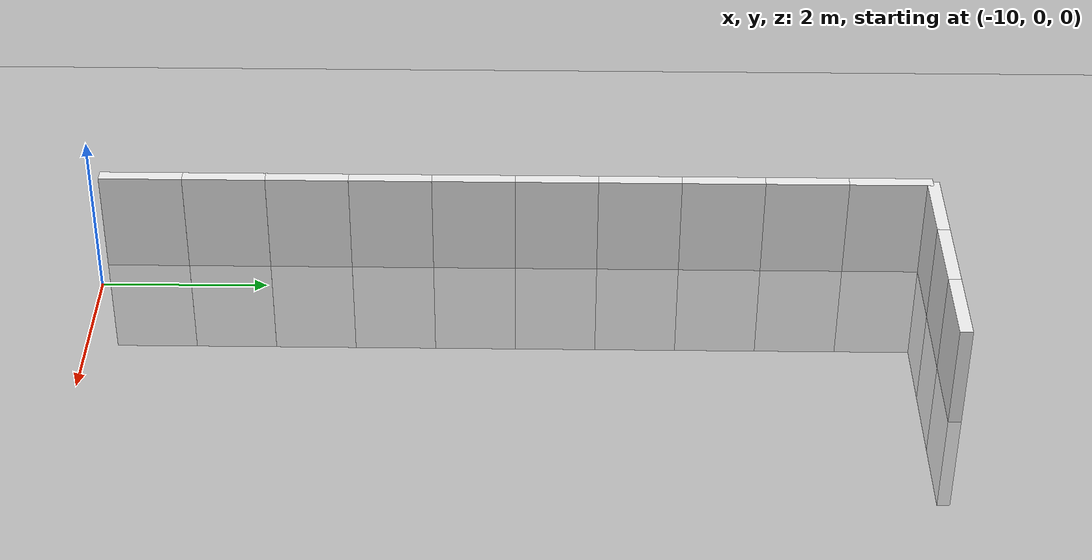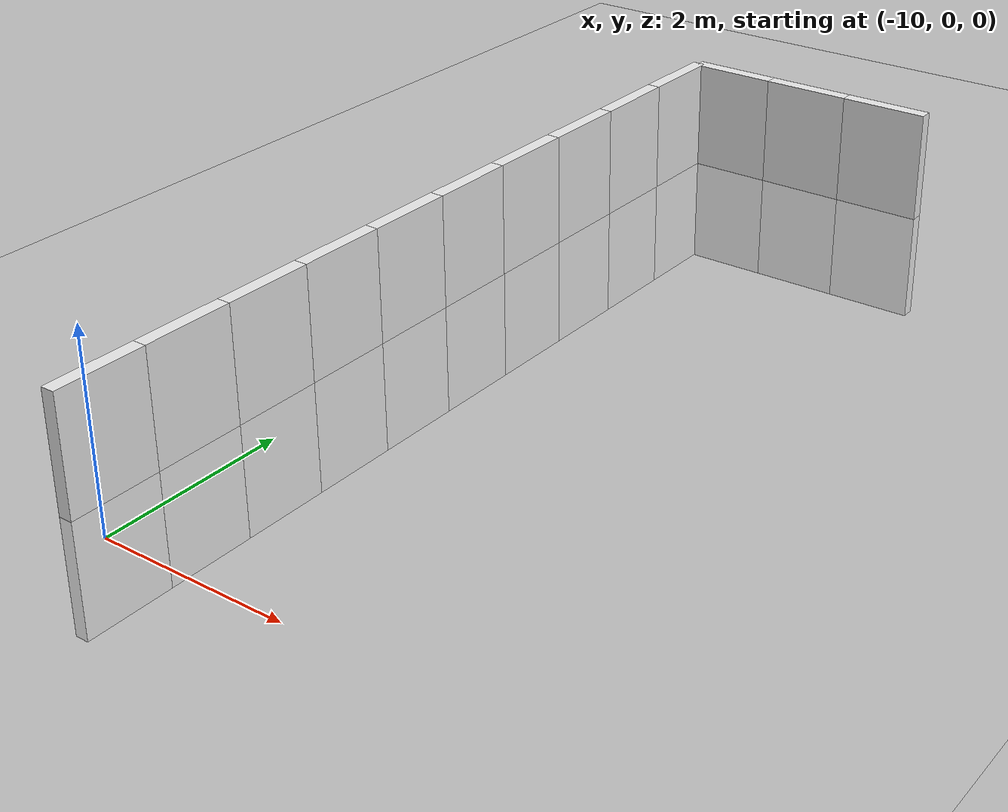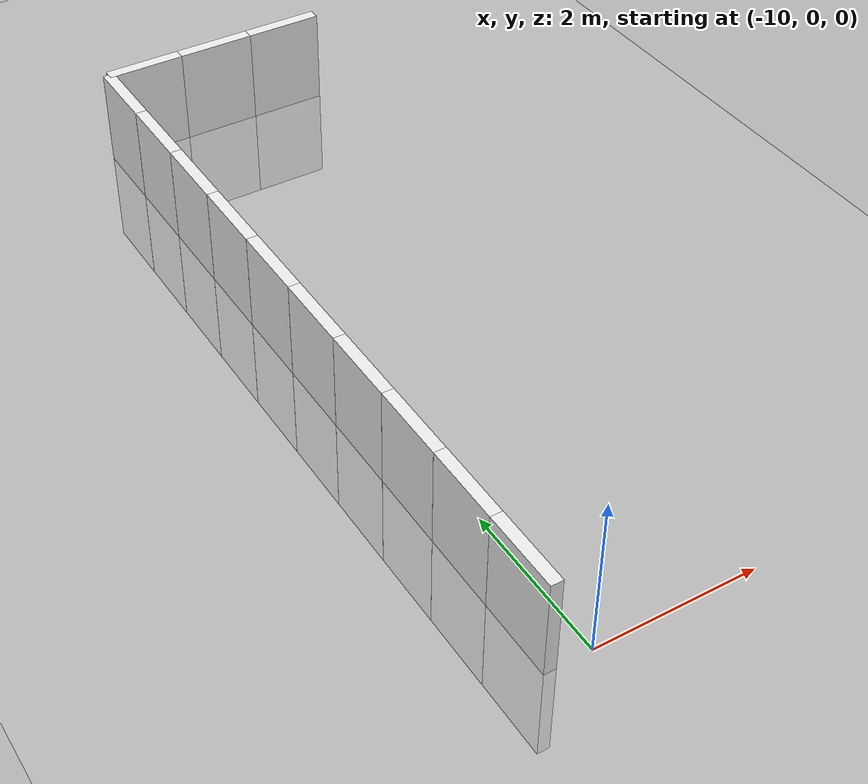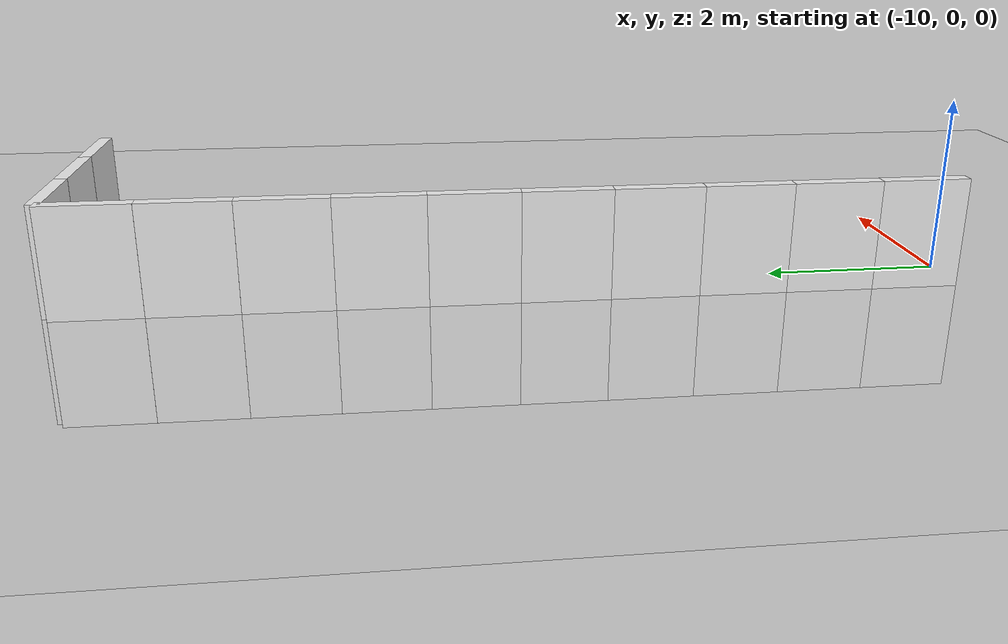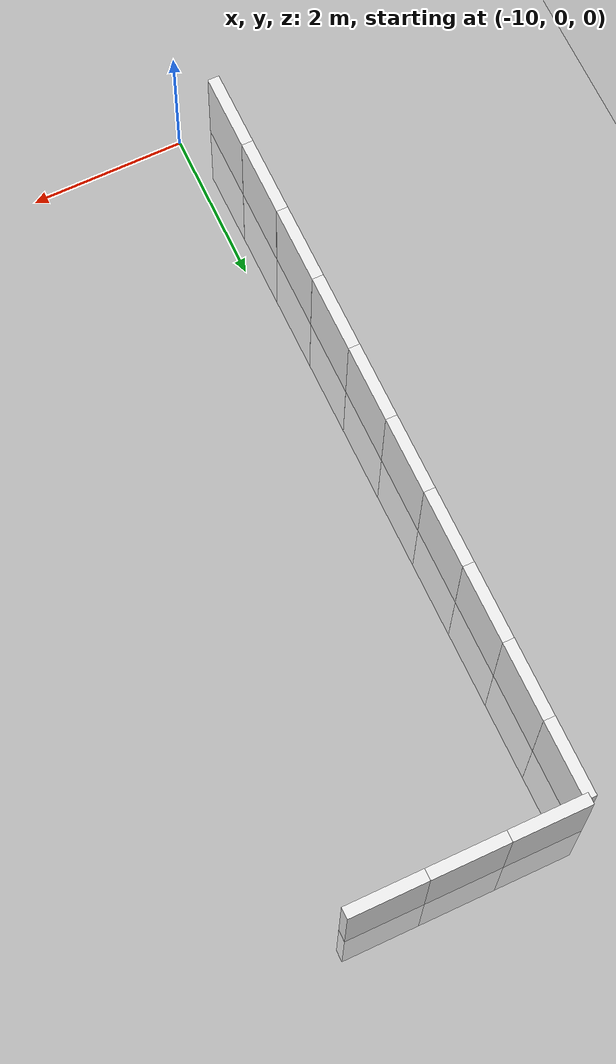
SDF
<sdf version="1.7">
 <world name="default">
  <model name="ground_plane">
   <static>1</static>
   <link name="link">
    <collision name="collision">
     <geometry><plane><normal>0 0 1</normal><size>100 100</size></plane></geometry>
     <surface>
      <contact><collide_bitmask>65535</collide_bitmask></contact>
      <friction><ode><mu>100</mu><mu2>50</mu2></ode></friction>
     </surface>
    </collision>
    <visual name="visual">
     <cast_shadows>0</cast_shadows>
     <geometry><plane><normal>0 0 1</normal><size>100 100</size></plane></geometry>
     <material>
      <script><uri>file://media/materials/scripts/gazebo.material</uri><name>Gazebo/Grey</name></script>
     </material>
    </visual>
   </link>
  </model>
  <model name="wall_left_01">
   <link name="Wall_10">
    <inertial>
     <mass>1</mass>
     <inertia><ixx>1</ixx><ixy>0</ixy><ixz>0</ixz><iyy>1</iyy><iyz>0</iyz><izz>1</izz></inertia>
    </inertial>
    <visual name="Wall_10_Visual_0">
     <geometry><box><size>1 0.15 2.5</size></box></geometry>
     <material>
      <script>
       <uri>model://wall/materials/scripts</uri>
       <uri>model://wall/materials/textures</uri>
       <name>wall_white</name>
      </script>
      <shader type="pixel"><normal_map>__default__</normal_map></shader>
      <ambient>1 1 1 1</ambient>
      <diffuse>1 1 1 1</diffuse>
      <specular>0 0 0 1</specular>
      <emissive>0 0 0 1</emissive>
     </material>
     <meta><layer>0</layer></meta>
    </visual>
    <collision name="Wall_10_Collision_0">
     <geometry><box><size>1 0.15 2.5</size></box></geometry>
     <surface>
      <friction>
       <ode><mu>1</mu><mu2>1</mu2><fdir1>0 0 0</fdir1><slip1>0</slip1><slip2>0</slip2></ode>
       <torsional>
        <coefficient>1</coefficient>
        <patch_radius>0</patch_radius>
        <surface_radius>0</surface_radius>
        <use_patch_radius>1</use_patch_radius>
        <ode><slip>0</slip></ode>
       </torsional>
      </friction>
      <bounce><restitution_coefficient>0</restitution_coefficient><threshold>1e+06</threshold></bounce>
      <contact>
       <collide_without_contact>0</collide_without_contact>
       <collide_without_contact_bitmask>1</collide_without_contact_bitmask>
       <collide_bitmask>1</collide_bitmask>
       <ode>
        <soft_cfm>0</soft_cfm>
        <soft_erp>0.2</soft_erp>
        <kp>1e+13</kp>
        <kd>1</kd>
        <max_vel>0.01</max_vel>
        <min_depth>0</min_depth>
       </ode>
       <bullet>
        <split_impulse>1</split_impulse>
        <split_impulse_penetration_threshold>-0.01</split_impulse_penetration_threshold>
        <soft_cfm>0</soft_cfm>
        <soft_erp>0.2</soft_erp>
        <kp>1e+13</kp>
        <kd>1</kd>
       </bullet>
      </contact>
     </surface>
    </collision>
   </link>
   <static>1</static>
   <pose>-10 10 0 0 -0 0</pose>
  </model>
  <model name="wall_left_02">
   <link name="Wall_10">
    <inertial>
     <mass>1</mass>
     <inertia><ixx>1</ixx><ixy>0</ixy><ixz>0</ixz><iyy>1</iyy><iyz>0</iyz><izz>1</izz></inertia>
    </inertial>
    <visual name="Wall_10_Visual_0">
     <geometry><box><size>1 0.15 2.5</size></box></geometry>
     <material>
      <script>
       <uri>model://wall/materials/scripts</uri>
       <uri>model://wall/materials/textures</uri>
       <name>wall_white</name>
      </script>
      <shader type="pixel"><normal_map>__default__</normal_map></shader>
      <ambient>1 1 1 1</ambient>
      <diffuse>1 1 1 1</diffuse>
      <specular>0 0 0 1</specular>
      <emissive>0 0 0 1</emissive>
     </material>
     <meta><layer>0</layer></meta>
    </visual>
    <collision name="Wall_10_Collision_0">
     <geometry><box><size>1 0.15 2.5</size></box></geometry>
     <surface>
      <friction>
       <ode><mu>1</mu><mu2>1</mu2><fdir1>0 0 0</fdir1><slip1>0</slip1><slip2>0</slip2></ode>
       <torsional>
        <coefficient>1</coefficient>
        <patch_radius>0</patch_radius>
        <surface_radius>0</surface_radius>
        <use_patch_radius>1</use_patch_radius>
        <ode><slip>0</slip></ode>
       </torsional>
      </friction>
      <bounce><restitution_coefficient>0</restitution_coefficient><threshold>1e+06</threshold></bounce>
      <contact>
       <collide_without_contact>0</collide_without_contact>
       <collide_without_contact_bitmask>1</collide_without_contact_bitmask>
       <collide_bitmask>1</collide_bitmask>
       <ode>
        <soft_cfm>0</soft_cfm>
        <soft_erp>0.2</soft_erp>
        <kp>1e+13</kp>
        <kd>1</kd>
        <max_vel>0.01</max_vel>
        <min_depth>0</min_depth>
       </ode>
       <bullet>
        <split_impulse>1</split_impulse>
        <split_impulse_penetration_threshold>-0.01</split_impulse_penetration_threshold>
        <soft_cfm>0</soft_cfm>
        <soft_erp>0.2</soft_erp>
        <kp>1e+13</kp>
        <kd>1</kd>
       </bullet>
      </contact>
     </surface>
    </collision>
   </link>
   <static>1</static>
   <pose>-9 10 0 0 -0 0</pose>
  </model>
  <model name="wall_left_03">
   <link name="Wall_10">
    <inertial>
     <mass>1</mass>
     <inertia><ixx>1</ixx><ixy>0</ixy><ixz>0</ixz><iyy>1</iyy><iyz>0</iyz><izz>1</izz></inertia>
    </inertial>
    <visual name="Wall_10_Visual_0">
     <geometry><box><size>1 0.15 2.5</size></box></geometry>
     <material>
      <script>
       <uri>model://wall/materials/scripts</uri>
       <uri>model://wall/materials/textures</uri>
       <name>wall_white</name>
      </script>
      <shader type="pixel"><normal_map>__default__</normal_map></shader>
      <ambient>1 1 1 1</ambient>
      <diffuse>1 1 1 1</diffuse>
      <specular>0 0 0 1</specular>
      <emissive>0 0 0 1</emissive>
     </material>
     <meta><layer>0</layer></meta>
    </visual>
    <collision name="Wall_10_Collision_0">
     <geometry><box><size>1 0.15 2.5</size></box></geometry>
     <surface>
      <friction>
       <ode><mu>1</mu><mu2>1</mu2><fdir1>0 0 0</fdir1><slip1>0</slip1><slip2>0</slip2></ode>
       <torsional>
        <coefficient>1</coefficient>
        <patch_radius>0</patch_radius>
        <surface_radius>0</surface_radius>
        <use_patch_radius>1</use_patch_radius>
        <ode><slip>0</slip></ode>
       </torsional>
      </friction>
      <bounce><restitution_coefficient>0</restitution_coefficient><threshold>1e+06</threshold></bounce>
      <contact>
       <collide_without_contact>0</collide_without_contact>
       <collide_without_contact_bitmask>1</collide_without_contact_bitmask>
       <collide_bitmask>1</collide_bitmask>
       <ode>
        <soft_cfm>0</soft_cfm>
        <soft_erp>0.2</soft_erp>
        <kp>1e+13</kp>
        <kd>1</kd>
        <max_vel>0.01</max_vel>
        <min_depth>0</min_depth>
       </ode>
       <bullet>
        <split_impulse>1</split_impulse>
        <split_impulse_penetration_threshold>-0.01</split_impulse_penetration_threshold>
        <soft_cfm>0</soft_cfm>
        <soft_erp>0.2</soft_erp>
        <kp>1e+13</kp>
        <kd>1</kd>
       </bullet>
      </contact>
     </surface>
    </collision>
   </link>
   <static>1</static>
   <pose>-8 10 0 0 -0 0</pose>
  </model>
  <model name="wall_back_01">
   <link name="Wall_10">
    <inertial>
     <mass>1</mass>
     <inertia><ixx>1</ixx><ixy>0</ixy><ixz>0</ixz><iyy>1</iyy><iyz>0</iyz><izz>1</izz></inertia>
    </inertial>
    <visual name="Wall_10_Visual_0">
     <geometry><box><size>1 0.15 2.5</size></box></geometry>
     <material>
      <script>
       <uri>model://wall/materials/scripts</uri>
       <uri>model://wall/materials/textures</uri>
       <name>wall_white</name>
      </script>
      <shader type="pixel"><normal_map>__default__</normal_map></shader>
      <ambient>1 1 1 1</ambient>
      <diffuse>1 1 1 1</diffuse>
      <specular>0 0 0 1</specular>
      <emissive>0 0 0 1</emissive>
     </material>
     <meta><layer>0</layer></meta>
    </visual>
    <collision name="Wall_10_Collision_0">
     <geometry><box><size>1 0.15 2.5</size></box></geometry>
     <surface>
      <friction>
       <ode><mu>1</mu><mu2>1</mu2><fdir1>0 0 0</fdir1><slip1>0</slip1><slip2>0</slip2></ode>
       <torsional>
        <coefficient>1</coefficient>
        <patch_radius>0</patch_radius>
        <surface_radius>0</surface_radius>
        <use_patch_radius>1</use_patch_radius>
        <ode><slip>0</slip></ode>
       </torsional>
      </friction>
      <bounce><restitution_coefficient>0</restitution_coefficient><threshold>1e+06</threshold></bounce>
      <contact>
       <collide_without_contact>0</collide_without_contact>
       <collide_without_contact_bitmask>1</collide_without_contact_bitmask>
       <collide_bitmask>1</collide_bitmask>
       <ode>
        <soft_cfm>0</soft_cfm>
        <soft_erp>0.2</soft_erp>
        <kp>1e+13</kp>
        <kd>1</kd>
        <max_vel>0.01</max_vel>
        <min_depth>0</min_depth>
       </ode>
       <bullet>
        <split_impulse>1</split_impulse>
        <split_impulse_penetration_threshold>-0.01</split_impulse_penetration_threshold>
        <soft_cfm>0</soft_cfm>
        <soft_erp>0.2</soft_erp>
        <kp>1e+13</kp>
        <kd>1</kd>
       </bullet>
      </contact>
     </surface>
    </collision>
   </link>
   <static>1</static>
   <pose>-10.5 9.5 0 0 -0 1.57</pose>
  </model>
  <model name="wall_back_02">
   <link name="Wall_10">
    <inertial>
     <mass>1</mass>
     <inertia><ixx>1</ixx><ixy>0</ixy><ixz>0</ixz><iyy>1</iyy><iyz>0</iyz><izz>1</izz></inertia>
    </inertial>
    <visual name="Wall_10_Visual_0">
     <geometry><box><size>1 0.15 2.5</size></box></geometry>
     <material>
      <script>
       <uri>model://wall/materials/scripts</uri>
       <uri>model://wall/materials/textures</uri>
       <name>wall_white</name>
      </script>
      <shader type="pixel"><normal_map>__default__</normal_map></shader>
      <ambient>1 1 1 1</ambient>
      <diffuse>1 1 1 1</diffuse>
      <specular>0 0 0 1</specular>
      <emissive>0 0 0 1</emissive>
     </material>
     <meta><layer>0</layer></meta>
    </visual>
    <collision name="Wall_10_Collision_0">
     <geometry><box><size>1 0.15 2.5</size></box></geometry>
     <surface>
      <friction>
       <ode><mu>1</mu><mu2>1</mu2><fdir1>0 0 0</fdir1><slip1>0</slip1><slip2>0</slip2></ode>
       <torsional>
        <coefficient>1</coefficient>
        <patch_radius>0</patch_radius>
        <surface_radius>0</surface_radius>
        <use_patch_radius>1</use_patch_radius>
        <ode><slip>0</slip></ode>
       </torsional>
      </friction>
      <bounce><restitution_coefficient>0</restitution_coefficient><threshold>1e+06</threshold></bounce>
      <contact>
       <collide_without_contact>0</collide_without_contact>
       <collide_without_contact_bitmask>1</collide_without_contact_bitmask>
       <collide_bitmask>1</collide_bitmask>
       <ode>
        <soft_cfm>0</soft_cfm>
        <soft_erp>0.2</soft_erp>
        <kp>1e+13</kp>
        <kd>1</kd>
        <max_vel>0.01</max_vel>
        <min_depth>0</min_depth>
       </ode>
       <bullet>
        <split_impulse>1</split_impulse>
        <split_impulse_penetration_threshold>-0.01</split_impulse_penetration_threshold>
        <soft_cfm>0</soft_cfm>
        <soft_erp>0.2</soft_erp>
        <kp>1e+13</kp>
        <kd>1</kd>
       </bullet>
      </contact>
     </surface>
    </collision>
   </link>
   <static>1</static>
   <pose>-10.5 8.5 0 0 -0 1.57</pose>
  </model>
  <model name="wall_back_03">
   <link name="Wall_10">
    <inertial>
     <mass>1</mass>
     <inertia><ixx>1</ixx><ixy>0</ixy><ixz>0</ixz><iyy>1</iyy><iyz>0</iyz><izz>1</izz></inertia>
    </inertial>
    <visual name="Wall_10_Visual_0">
     <geometry><box><size>1 0.15 2.5</size></box></geometry>
     <material>
      <script>
       <uri>model://wall/materials/scripts</uri>
       <uri>model://wall/materials/textures</uri>
       <name>wall_white</name>
      </script>
      <shader type="pixel"><normal_map>__default__</normal_map></shader>
      <ambient>1 1 1 1</ambient>
      <diffuse>1 1 1 1</diffuse>
      <specular>0 0 0 1</specular>
      <emissive>0 0 0 1</emissive>
     </material>
     <meta><layer>0</layer></meta>
    </visual>
    <collision name="Wall_10_Collision_0">
     <geometry><box><size>1 0.15 2.5</size></box></geometry>
     <surface>
      <friction>
       <ode><mu>1</mu><mu2>1</mu2><fdir1>0 0 0</fdir1><slip1>0</slip1><slip2>0</slip2></ode>
       <torsional>
        <coefficient>1</coefficient>
        <patch_radius>0</patch_radius>
        <surface_radius>0</surface_radius>
        <use_patch_radius>1</use_patch_radius>
        <ode><slip>0</slip></ode>
       </torsional>
      </friction>
      <bounce><restitution_coefficient>0</restitution_coefficient><threshold>1e+06</threshold></bounce>
      <contact>
       <collide_without_contact>0</collide_without_contact>
       <collide_without_contact_bitmask>1</collide_without_contact_bitmask>
       <collide_bitmask>1</collide_bitmask>
       <ode>
        <soft_cfm>0</soft_cfm>
        <soft_erp>0.2</soft_erp>
        <kp>1e+13</kp>
        <kd>1</kd>
        <max_vel>0.01</max_vel>
        <min_depth>0</min_depth>
       </ode>
       <bullet>
        <split_impulse>1</split_impulse>
        <split_impulse_penetration_threshold>-0.01</split_impulse_penetration_threshold>
        <soft_cfm>0</soft_cfm>
        <soft_erp>0.2</soft_erp>
        <kp>1e+13</kp>
        <kd>1</kd>
       </bullet>
      </contact>
     </surface>
    </collision>
   </link>
   <static>1</static>
   <pose>-10.5 7.5 0 0 -0 1.57</pose>
  </model>
  <model name="wall_back_04">
   <link name="Wall_10">
    <inertial>
     <mass>1</mass>
     <inertia><ixx>1</ixx><ixy>0</ixy><ixz>0</ixz><iyy>1</iyy><iyz>0</iyz><izz>1</izz></inertia>
    </inertial>
    <visual name="Wall_10_Visual_0">
     <geometry><box><size>1 0.15 2.5</size></box></geometry>
     <material>
      <script>
       <uri>model://wall/materials/scripts</uri>
       <uri>model://wall/materials/textures</uri>
       <name>wall_white</name>
      </script>
      <shader type="pixel"><normal_map>__default__</normal_map></shader>
      <ambient>1 1 1 1</ambient>
      <diffuse>1 1 1 1</diffuse>
      <specular>0 0 0 1</specular>
      <emissive>0 0 0 1</emissive>
     </material>
     <meta><layer>0</layer></meta>
    </visual>
    <collision name="Wall_10_Collision_0">
     <geometry><box><size>1 0.15 2.5</size></box></geometry>
     <surface>
      <friction>
       <ode><mu>1</mu><mu2>1</mu2><fdir1>0 0 0</fdir1><slip1>0</slip1><slip2>0</slip2></ode>
       <torsional>
        <coefficient>1</coefficient>
        <patch_radius>0</patch_radius>
        <surface_radius>0</surface_radius>
        <use_patch_radius>1</use_patch_radius>
        <ode><slip>0</slip></ode>
       </torsional>
      </friction>
      <bounce><restitution_coefficient>0</restitution_coefficient><threshold>1e+06</threshold></bounce>
      <contact>
       <collide_without_contact>0</collide_without_contact>
       <collide_without_contact_bitmask>1</collide_without_contact_bitmask>
       <collide_bitmask>1</collide_bitmask>
       <ode>
        <soft_cfm>0</soft_cfm>
        <soft_erp>0.2</soft_erp>
        <kp>1e+13</kp>
        <kd>1</kd>
        <max_vel>0.01</max_vel>
        <min_depth>0</min_depth>
       </ode>
       <bullet>
        <split_impulse>1</split_impulse>
        <split_impulse_penetration_threshold>-0.01</split_impulse_penetration_threshold>
        <soft_cfm>0</soft_cfm>
        <soft_erp>0.2</soft_erp>
        <kp>1e+13</kp>
        <kd>1</kd>
       </bullet>
      </contact>
     </surface>
    </collision>
   </link>
   <static>1</static>
   <pose>-10.5 6.5 0 0 -0 1.57</pose>
  </model>
  <model name="wall_back_05">
   <link name="Wall_10">
    <inertial>
     <mass>1</mass>
     <inertia><ixx>1</ixx><ixy>0</ixy><ixz>0</ixz><iyy>1</iyy><iyz>0</iyz><izz>1</izz></inertia>
    </inertial>
    <visual name="Wall_10_Visual_0">
     <geometry><box><size>1 0.15 2.5</size></box></geometry>
     <material>
      <script>
       <uri>model://wall/materials/scripts</uri>
       <uri>model://wall/materials/textures</uri>
       <name>wall_white</name>
      </script>
      <shader type="pixel"><normal_map>__default__</normal_map></shader>
      <ambient>1 1 1 1</ambient>
      <diffuse>1 1 1 1</diffuse>
      <specular>0 0 0 1</specular>
      <emissive>0 0 0 1</emissive>
     </material>
     <meta><layer>0</layer></meta>
    </visual>
    <collision name="Wall_10_Collision_0">
     <geometry><box><size>1 0.15 2.5</size></box></geometry>
     <surface>
      <friction>
       <ode><mu>1</mu><mu2>1</mu2><fdir1>0 0 0</fdir1><slip1>0</slip1><slip2>0</slip2></ode>
       <torsional>
        <coefficient>1</coefficient>
        <patch_radius>0</patch_radius>
        <surface_radius>0</surface_radius>
        <use_patch_radius>1</use_patch_radius>
        <ode><slip>0</slip></ode>
       </torsional>
      </friction>
      <bounce><restitution_coefficient>0</restitution_coefficient><threshold>1e+06</threshold></bounce>
      <contact>
       <collide_without_contact>0</collide_without_contact>
       <collide_without_contact_bitmask>1</collide_without_contact_bitmask>
       <collide_bitmask>1</collide_bitmask>
       <ode>
        <soft_cfm>0</soft_cfm>
        <soft_erp>0.2</soft_erp>
        <kp>1e+13</kp>
        <kd>1</kd>
        <max_vel>0.01</max_vel>
        <min_depth>0</min_depth>
       </ode>
       <bullet>
        <split_impulse>1</split_impulse>
        <split_impulse_penetration_threshold>-0.01</split_impulse_penetration_threshold>
        <soft_cfm>0</soft_cfm>
        <soft_erp>0.2</soft_erp>
        <kp>1e+13</kp>
        <kd>1</kd>
       </bullet>
      </contact>
     </surface>
    </collision>
   </link>
   <static>1</static>
   <pose>-10.5 5.5 0 0 -0 1.57</pose>
  </model>
  <model name="wall_back_06">
   <link name="Wall_10">
    <inertial>
     <mass>1</mass>
     <inertia><ixx>1</ixx><ixy>0</ixy><ixz>0</ixz><iyy>1</iyy><iyz>0</iyz><izz>1</izz></inertia>
    </inertial>
    <visual name="Wall_10_Visual_0">
     <geometry><box><size>1 0.15 2.5</size></box></geometry>
     <material>
      <script>
       <uri>model://wall/materials/scripts</uri>
       <uri>model://wall/materials/textures</uri>
       <name>wall_white</name>
      </script>
      <shader type="pixel"><normal_map>__default__</normal_map></shader>
      <ambient>1 1 1 1</ambient>
      <diffuse>1 1 1 1</diffuse>
      <specular>0 0 0 1</specular>
      <emissive>0 0 0 1</emissive>
     </material>
     <meta><layer>0</layer></meta>
    </visual>
    <collision name="Wall_10_Collision_0">
     <geometry><box><size>1 0.15 2.5</size></box></geometry>
     <surface>
      <friction>
       <ode><mu>1</mu><mu2>1</mu2><fdir1>0 0 0</fdir1><slip1>0</slip1><slip2>0</slip2></ode>
       <torsional>
        <coefficient>1</coefficient>
        <patch_radius>0</patch_radius>
        <surface_radius>0</surface_radius>
        <use_patch_radius>1</use_patch_radius>
        <ode><slip>0</slip></ode>
       </torsional>
      </friction>
      <bounce><restitution_coefficient>0</restitution_coefficient><threshold>1e+06</threshold></bounce>
      <contact>
       <collide_without_contact>0</collide_without_contact>
       <collide_without_contact_bitmask>1</collide_without_contact_bitmask>
       <collide_bitmask>1</collide_bitmask>
       <ode>
        <soft_cfm>0</soft_cfm>
        <soft_erp>0.2</soft_erp>
        <kp>1e+13</kp>
        <kd>1</kd>
        <max_vel>0.01</max_vel>
        <min_depth>0</min_depth>
       </ode>
       <bullet>
        <split_impulse>1</split_impulse>
        <split_impulse_penetration_threshold>-0.01</split_impulse_penetration_threshold>
        <soft_cfm>0</soft_cfm>
        <soft_erp>0.2</soft_erp>
        <kp>1e+13</kp>
        <kd>1</kd>
       </bullet>
      </contact>
     </surface>
    </collision>
   </link>
   <static>1</static>
   <pose>-10.5 4.5 0 0 -0 1.57</pose>
  </model>
  <model name="wall_back_07">
   <link name="Wall_10">
    <inertial>
     <mass>1</mass>
     <inertia><ixx>1</ixx><ixy>0</ixy><ixz>0</ixz><iyy>1</iyy><iyz>0</iyz><izz>1</izz></inertia>
    </inertial>
    <visual name="Wall_10_Visual_0">
     <geometry><box><size>1 0.15 2.5</size></box></geometry>
     <material>
      <script>
       <uri>model://wall/materials/scripts</uri>
       <uri>model://wall/materials/textures</uri>
       <name>wall_white</name>
      </script>
      <shader type="pixel"><normal_map>__default__</normal_map></shader>
      <ambient>1 1 1 1</ambient>
      <diffuse>1 1 1 1</diffuse>
      <specular>0 0 0 1</specular>
      <emissive>0 0 0 1</emissive>
     </material>
     <meta><layer>0</layer></meta>
    </visual>
    <collision name="Wall_10_Collision_0">
     <geometry><box><size>1 0.15 2.5</size></box></geometry>
     <surface>
      <friction>
       <ode><mu>1</mu><mu2>1</mu2><fdir1>0 0 0</fdir1><slip1>0</slip1><slip2>0</slip2></ode>
       <torsional>
        <coefficient>1</coefficient>
        <patch_radius>0</patch_radius>
        <surface_radius>0</surface_radius>
        <use_patch_radius>1</use_patch_radius>
        <ode><slip>0</slip></ode>
       </torsional>
      </friction>
      <bounce><restitution_coefficient>0</restitution_coefficient><threshold>1e+06</threshold></bounce>
      <contact>
       <collide_without_contact>0</collide_without_contact>
       <collide_without_contact_bitmask>1</collide_without_contact_bitmask>
       <collide_bitmask>1</collide_bitmask>
       <ode>
        <soft_cfm>0</soft_cfm>
        <soft_erp>0.2</soft_erp>
        <kp>1e+13</kp>
        <kd>1</kd>
        <max_vel>0.01</max_vel>
        <min_depth>0</min_depth>
       </ode>
       <bullet>
        <split_impulse>1</split_impulse>
        <split_impulse_penetration_threshold>-0.01</split_impulse_penetration_threshold>
        <soft_cfm>0</soft_cfm>
        <soft_erp>0.2</soft_erp>
        <kp>1e+13</kp>
        <kd>1</kd>
       </bullet>
      </contact>
     </surface>
    </collision>
   </link>
   <static>1</static>
   <pose>-10.5 3.5 0 0 -0 1.57</pose>
  </model>
  <model name="wall_back_08">
   <link name="Wall_10">
    <inertial>
     <mass>1</mass>
     <inertia><ixx>1</ixx><ixy>0</ixy><ixz>0</ixz><iyy>1</iyy><iyz>0</iyz><izz>1</izz></inertia>
    </inertial>
    <visual name="Wall_10_Visual_0">
     <geometry><box><size>1 0.15 2.5</size></box></geometry>
     <material>
      <script>
       <uri>model://wall/materials/scripts</uri>
       <uri>model://wall/materials/textures</uri>
       <name>wall_white</name>
      </script>
      <shader type="pixel"><normal_map>__default__</normal_map></shader>
      <ambient>1 1 1 1</ambient>
      <diffuse>1 1 1 1</diffuse>
      <specular>0 0 0 1</specular>
      <emissive>0 0 0 1</emissive>
     </material>
     <meta><layer>0</layer></meta>
    </visual>
    <collision name="Wall_10_Collision_0">
     <geometry><box><size>1 0.15 2.5</size></box></geometry>
     <surface>
      <friction>
       <ode><mu>1</mu><mu2>1</mu2><fdir1>0 0 0</fdir1><slip1>0</slip1><slip2>0</slip2></ode>
       <torsional>
        <coefficient>1</coefficient>
        <patch_radius>0</patch_radius>
        <surface_radius>0</surface_radius>
        <use_patch_radius>1</use_patch_radius>
        <ode><slip>0</slip></ode>
       </torsional>
      </friction>
      <bounce><restitution_coefficient>0</restitution_coefficient><threshold>1e+06</threshold></bounce>
      <contact>
       <collide_without_contact>0</collide_without_contact>
       <collide_without_contact_bitmask>1</collide_without_contact_bitmask>
       <collide_bitmask>1</collide_bitmask>
       <ode>
        <soft_cfm>0</soft_cfm>
        <soft_erp>0.2</soft_erp>
        <kp>1e+13</kp>
        <kd>1</kd>
        <max_vel>0.01</max_vel>
        <min_depth>0</min_depth>
       </ode>
       <bullet>
        <split_impulse>1</split_impulse>
        <split_impulse_penetration_threshold>-0.01</split_impulse_penetration_threshold>
        <soft_cfm>0</soft_cfm>
        <soft_erp>0.2</soft_erp>
        <kp>1e+13</kp>
        <kd>1</kd>
       </bullet>
      </contact>
     </surface>
    </collision>
   </link>
   <static>1</static>
   <pose>-10.5 2.5 0 0 -0 1.57</pose>
  </model>
  <model name="wall_back_09">
   <link name="Wall_10">
    <inertial>
     <mass>1</mass>
     <inertia><ixx>1</ixx><ixy>0</ixy><ixz>0</ixz><iyy>1</iyy><iyz>0</iyz><izz>1</izz></inertia>
    </inertial>
    <visual name="Wall_10_Visual_0">
     <geometry><box><size>1 0.15 2.5</size></box></geometry>
     <material>
      <script>
       <uri>model://wall/materials/scripts</uri>
       <uri>model://wall/materials/textures</uri>
       <name>wall_white</name>
      </script>
      <shader type="pixel"><normal_map>__default__</normal_map></shader>
      <ambient>1 1 1 1</ambient>
      <diffuse>1 1 1 1</diffuse>
      <specular>0 0 0 1</specular>
      <emissive>0 0 0 1</emissive>
     </material>
     <meta><layer>0</layer></meta>
    </visual>
    <collision name="Wall_10_Collision_0">
     <geometry><box><size>1 0.15 2.5</size></box></geometry>
     <surface>
      <friction>
       <ode><mu>1</mu><mu2>1</mu2><fdir1>0 0 0</fdir1><slip1>0</slip1><slip2>0</slip2></ode>
       <torsional>
        <coefficient>1</coefficient>
        <patch_radius>0</patch_radius>
        <surface_radius>0</surface_radius>
        <use_patch_radius>1</use_patch_radius>
        <ode><slip>0</slip></ode>
       </torsional>
      </friction>
      <bounce><restitution_coefficient>0</restitution_coefficient><threshold>1e+06</threshold></bounce>
      <contact>
       <collide_without_contact>0</collide_without_contact>
       <collide_without_contact_bitmask>1</collide_without_contact_bitmask>
       <collide_bitmask>1</collide_bitmask>
       <ode>
        <soft_cfm>0</soft_cfm>
        <soft_erp>0.2</soft_erp>
        <kp>1e+13</kp>
        <kd>1</kd>
        <max_vel>0.01</max_vel>
        <min_depth>0</min_depth>
       </ode>
       <bullet>
        <split_impulse>1</split_impulse>
        <split_impulse_penetration_threshold>-0.01</split_impulse_penetration_threshold>
        <soft_cfm>0</soft_cfm>
        <soft_erp>0.2</soft_erp>
        <kp>1e+13</kp>
        <kd>1</kd>
       </bullet>
      </contact>
     </surface>
    </collision>
   </link>
   <static>1</static>
   <pose>-10.5 1.5 0 0 -0 1.57</pose>
  </model>
  <model name="wall_back_10">
   <link name="Wall_10">
    <inertial>
     <mass>1</mass>
     <inertia><ixx>1</ixx><ixy>0</ixy><ixz>0</ixz><iyy>1</iyy><iyz>0</iyz><izz>1</izz></inertia>
    </inertial>
    <visual name="Wall_10_Visual_0">
     <geometry><box><size>1 0.15 2.5</size></box></geometry>
     <material>
      <script>
       <uri>model://wall/materials/scripts</uri>
       <uri>model://wall/materials/textures</uri>
       <name>wall_white</name>
      </script>
      <shader type="pixel"><normal_map>__default__</normal_map></shader>
      <ambient>1 1 1 1</ambient>
      <diffuse>1 1 1 1</diffuse>
      <specular>0 0 0 1</specular>
      <emissive>0 0 0 1</emissive>
     </material>
     <meta><layer>0</layer></meta>
    </visual>
    <collision name="Wall_10_Collision_0">
     <geometry><box><size>1 0.15 2.5</size></box></geometry>
     <surface>
      <friction>
       <ode><mu>1</mu><mu2>1</mu2><fdir1>0 0 0</fdir1><slip1>0</slip1><slip2>0</slip2></ode>
       <torsional>
        <coefficient>1</coefficient>
        <patch_radius>0</patch_radius>
        <surface_radius>0</surface_radius>
        <use_patch_radius>1</use_patch_radius>
        <ode><slip>0</slip></ode>
       </torsional>
      </friction>
      <bounce><restitution_coefficient>0</restitution_coefficient><threshold>1e+06</threshold></bounce>
      <contact>
       <collide_without_contact>0</collide_without_contact>
       <collide_without_contact_bitmask>1</collide_without_contact_bitmask>
       <collide_bitmask>1</collide_bitmask>
       <ode>
        <soft_cfm>0</soft_cfm>
        <soft_erp>0.2</soft_erp>
        <kp>1e+13</kp>
        <kd>1</kd>
        <max_vel>0.01</max_vel>
        <min_depth>0</min_depth>
       </ode>
       <bullet>
        <split_impulse>1</split_impulse>
        <split_impulse_penetration_threshold>-0.01</split_impulse_penetration_threshold>
        <soft_cfm>0</soft_cfm>
        <soft_erp>0.2</soft_erp>
        <kp>1e+13</kp>
        <kd>1</kd>
       </bullet>
      </contact>
     </surface>
    </collision>
   </link>
   <static>1</static>
   <pose>-10.5 0.5 0 0 -0 1.57</pose>
  </model>
 </world>
</sdf>
